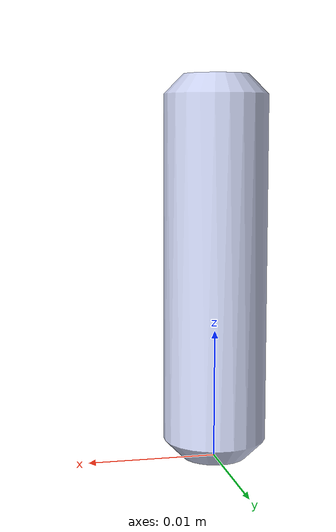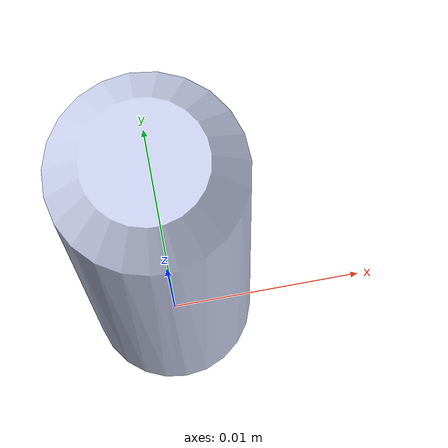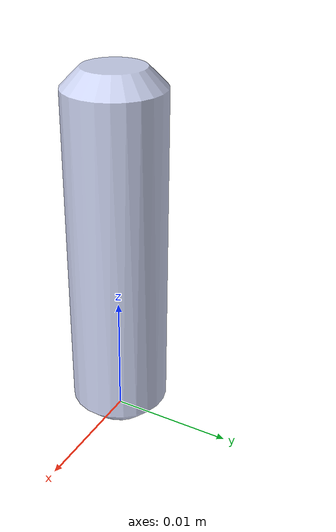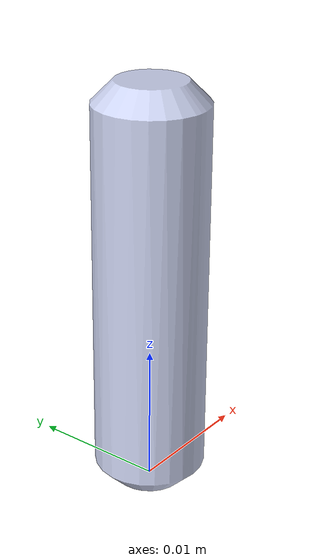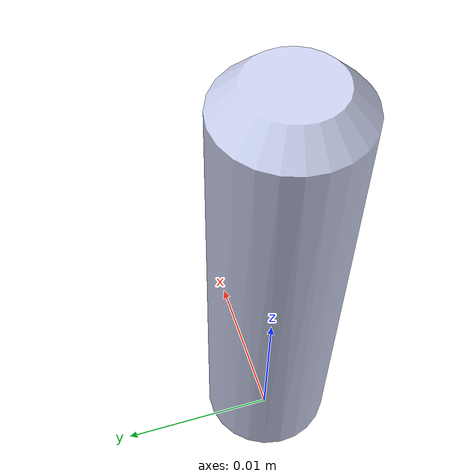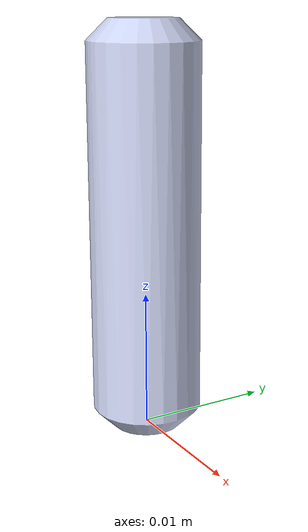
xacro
<?xml version="1.0" encoding="utf-8"?>
<robot name="wood_bolt" xmlns:xacro="http://www.ros.org/wiki/xacro">
  <link name="wood_bolt">
    <inertial>
      <origin
        xyz="1.9798E-50 1.00856473359767E-18 0.0149"
        rpy="0 0 0" />
      <mass
        value="0.0014484" />
      <inertia
        ixx="1.0629E-07"
        ixy="-5.6612E-42"
        ixz="-4.212E-41"
        iyy="1.0629E-07"
        iyz="-6.2234852887356E-24"
        izz="1.1359E-08" />
    </inertial>
    <visual>
      <origin
        xyz="0 0 0"
        rpy="1.5707963267949 0 0" />
      <geometry>
        <mesh
          filename="package://cai_env/meshes/wood_bolt.STL" />
      </geometry>
      <material name="wood">
        <color rgba="0.79216 0.81961 0.93333 1" />
      </material>
    </visual>
    <collision>
      <origin
        xyz="0 0 0"
        rpy="1.5707963267949 0 0" />
      <geometry>
        <mesh
          filename="package://cai_env/meshes/wood_bolt.STL" />
      </geometry>
    </collision>
  </link>

  <gazebo reference="wood_bolt">
   <material>Gazebo/Wood</material>
  </gazebo>
</robot>
